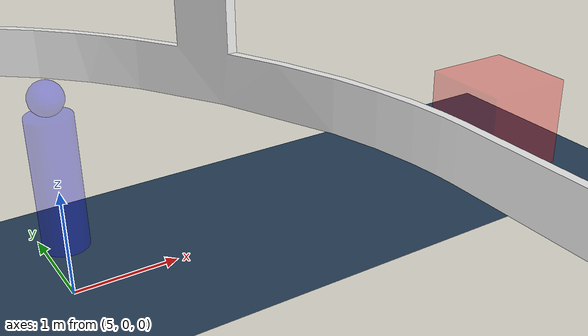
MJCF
<mujoco model="body1_corrected">
  <compiler angle="radian" meshdir="3d escritorio/body1_structure/"/>

  <visual>
    <headlight diffuse="0.6 0.6 0.6" ambient="0.3 0.3 0.3" specular="0 0 0"/>
    <rgba haze="0.15 0.25 0.35 1"/>
    <global azimuth="-130" elevation="-20"/>
  </visual>

  <default>
    <default class="visual">
      <geom group="2" type="mesh" contype="0" conaffinity="0"/>
    </default>
    <default class="collision">
      <geom group="3" type="mesh"/>
    </default>
  </default>

  <asset>
    <texture type="skybox" builtin="gradient" rgb1="0.3 0.5 0.7" rgb2="0 0 0" width="512" height="3072"/>
    <texture type="2d" name="groundplane" builtin="checker" mark="edge" rgb1="0.2 0.3 0.4" rgb2="0.1 0.2 0.3"
      markrgb="0.8 0.8 0.8" width="300" height="300"/>
    <material name="groundplane" texture="groundplane" texuniform="true" texrepeat="5 5" reflectance="0.2"/>
    <material name="wall" rgba="0.95 0.95 0.95 1" specular="0.1"/>

    <!-- Body1 mesh com escala corrigida (10x maior) -->
    <mesh file="body1_structure.obj" scale="0.01 0.01 0.01"/>
  </asset>

  <worldbody>
    <!-- Luz adicional -->
    <light pos="0 0 10" dir="0 0 -1" directional="true"/>

    <!-- Chão -->
    <geom name="floor" size="50 50 0.01" type="plane" material="groundplane"/>

    <!-- Body1 (paredes) com escala correta -->
    <body name="walls" pos="-5.73 -7.00 0">
      <geom mesh="body1_structure" class="visual" material="wall"/>
    </body>

    <!-- Cubo de referência para escala (1m x 1m x 1m) -->
    <body name="reference_cube" pos="10 0 0.5">
      <geom type="box" size="0.5 0.5 0.5" rgba="1 0 0 0.3"/>
    </body>

    <!-- Figura humana de referência (1.7m altura) -->
    <body name="human_reference" pos="5 0 0">
      <!-- Corpo -->
      <geom type="cylinder" size="0.2 0.6" pos="0 0 1.1" rgba="0 0 1 0.3"/>
      <!-- Cabeça -->
      <geom type="sphere" size="0.15" pos="0 0 1.85" rgba="0 0 1 0.3"/>
    </body>
  </worldbody>

  <!-- Câmera personalizada -->
  <statistic center="0 0 2" extent="15"/>
</mujoco>
